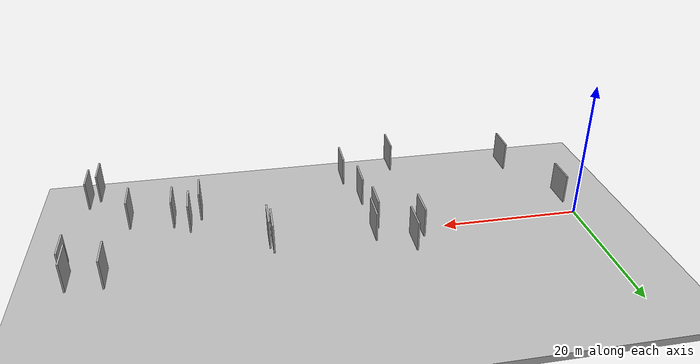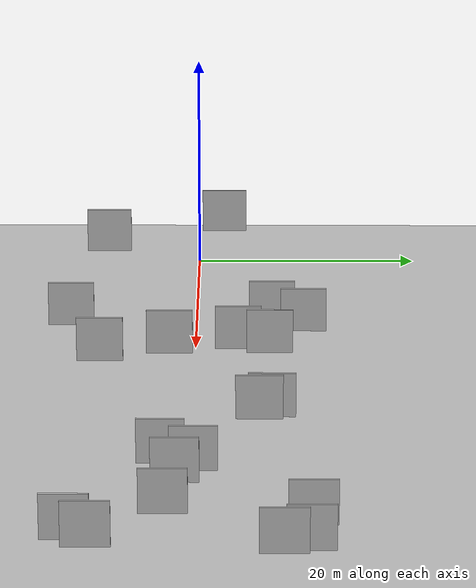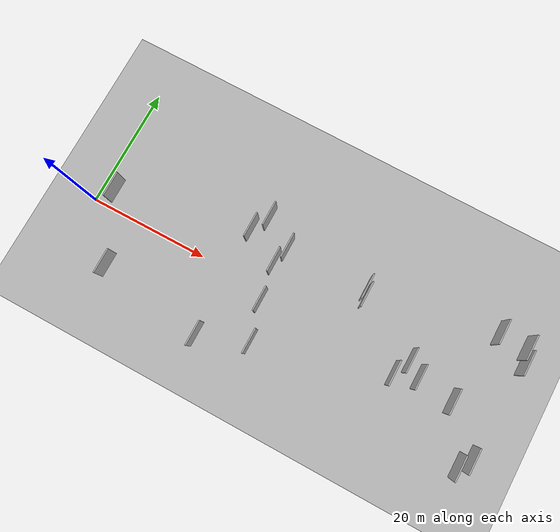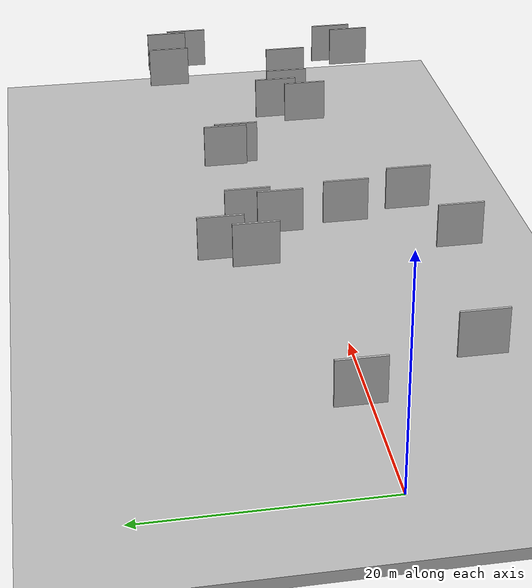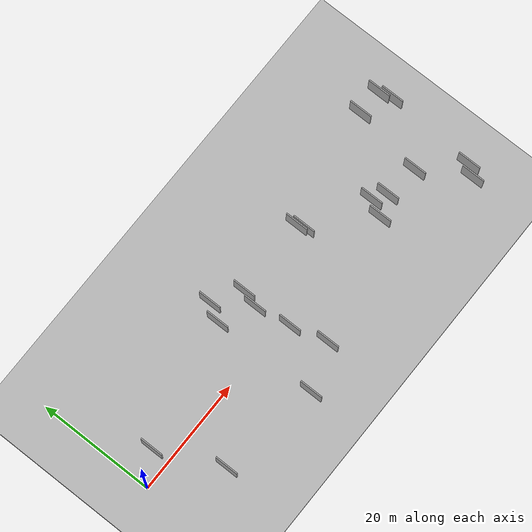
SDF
<?xml version="1.0" encoding="utf-8"?>

<sdf version="1.6">

   <world name="default">

      <gui fullscreen="0">

         <camera name="user_camera">

            <pose>-15 0 4.57585 0 0 0</pose>

            <view_controller>orbit</view_controller>

         </camera>

      </gui>

      <scene>

         <sky>

           <clouds>

             <speed>12</speed>

           </clouds>

         </sky>

         <ambient>0.4 0.4 0.4 1</ambient>

         <background>0.7 0.7 0.7 1</background>

         <shadows>1</shadows>

      </scene>

      <gravity>0 0 -9.8066</gravity>

      <magnetic_field>6e-06 2.3e-05 -4.2e-05</magnetic_field>

      <physics default="0" name="default_physics" type="ode">

         <ode>

            <solver>

               <type>quick</type>

               <iters>10</iters>

               <sor>1.0</sor>

               <use_dynamic_moi_rescaling>0</use_dynamic_moi_rescaling>

            </solver>

            <constraints>

               <cfm>0</cfm>

               <erp>0.2</erp>

               <contact_max_correcting_vel>100</contact_max_correcting_vel>

               <contact_surface_layer>0.001</contact_surface_layer>

            </constraints>

         </ode>

         <max_step_size>0.004</max_step_size>

         <real_time_factor>1</real_time_factor>

         <real_time_update_rate>250</real_time_update_rate>

      </physics>

      <light name="sun" type="directional">

         <cast_shadows>1</cast_shadows>

         <pose>0 0 10 0 0 0</pose>

         <diffuse>0.8 0.8 0.8 1</diffuse>

         <specular>0.2 0.2 0.2 1</specular>

         <attenuation>

            <range>1000</range>

            <constant>0.9</constant>

            <linear>0.01</linear>

            <quadratic>0.001</quadratic>

         </attenuation>

         <direction>-0.5 0.1 -0.9</direction>

      </light>

      <include>

         <name>ground_plane_1</name>

         <uri>model://HANNAS_ground_plane</uri>

         <pose>0 0 0  0 0 0</pose>

      </include>

      <include>

         <name>ground_plane_2</name>

         <uri>model://HANNAS_ground_plane</uri>

         <pose>100 0 0  0 0 0</pose>

      </include>

      <model name="HANNAS_wall_1">

         <static>1</static>

         <pose frame="">53.8403 -2.2216 5.0 0.000000 0.000000 1.570796</pose>

         <link name="link">

            <pose frame="">0 0 2.00 0 0 0</pose>

            <collision name="collision">

               <geometry>

                  <box>

                     <size>4.00 0.2 4.00</size>

                  </box>

               </geometry>

               <max_contacts>10</max_contacts>

               <surface>

                  <contact>

                     <ode/>

                  </contact>

                  <bounce/>

                  <friction>

                     <torsional>

                        <ode/>

                     </torsional>

                     <ode/>

                  </friction>

               </surface>

            </collision>

            <visual name="visual">

               <cast_shadows>0</cast_shadows>

               <geometry>

                  <box>

                     <size>4.00 0.2 4.00</size>

                  </box>

               </geometry>

               <material>

                  <script>

                     <uri>model://HANNAS_wall/materials/scripts</uri>

                     <uri>model://HANNAS_wall/materials/textures</uri>

                     <name>vrc/HANNAS_wall</name>

                  </script>

               </material>

            </visual>

            <self_collide>0</self_collide>

            <enable_wind>0</enable_wind>

            <kinematic>0</kinematic>

         </link>

      </model>

      <model name="HANNAS_wall_2">

         <static>1</static>

         <pose frame="">27.2654 9.5845 5.0 0.000000 0.000000 1.570796</pose>

         <link name="link">

            <pose frame="">0 0 2.00 0 0 0</pose>

            <collision name="collision">

               <geometry>

                  <box>

                     <size>4.00 0.2 4.00</size>

                  </box>

               </geometry>

               <max_contacts>10</max_contacts>

               <surface>

                  <contact>

                     <ode/>

                  </contact>

                  <bounce/>

                  <friction>

                     <torsional>

                        <ode/>

                     </torsional>

                     <ode/>

                  </friction>

               </surface>

            </collision>

            <visual name="visual">

               <cast_shadows>0</cast_shadows>

               <geometry>

                  <box>

                     <size>4.00 0.2 4.00</size>

                  </box>

               </geometry>

               <material>

                  <script>

                     <uri>model://HANNAS_wall/materials/scripts</uri>

                     <uri>model://HANNAS_wall/materials/textures</uri>

                     <name>vrc/HANNAS_wall</name>

                  </script>

               </material>

            </visual>

            <self_collide>0</self_collide>

            <enable_wind>0</enable_wind>

            <kinematic>0</kinematic>

         </link>

      </model>

      <model name="HANNAS_wall_3">

         <static>1</static>

         <pose frame="">33.6420 -7.9944 5.0 0.000000 0.000000 1.570796</pose>

         <link name="link">

            <pose frame="">0 0 2.00 0 0 0</pose>

            <collision name="collision">

               <geometry>

                  <box>

                     <size>4.00 0.2 4.00</size>

                  </box>

               </geometry>

               <max_contacts>10</max_contacts>

               <surface>

                  <contact>

                     <ode/>

                  </contact>

                  <bounce/>

                  <friction>

                     <torsional>

                        <ode/>

                     </torsional>

                     <ode/>

                  </friction>

               </surface>

            </collision>

            <visual name="visual">

               <cast_shadows>0</cast_shadows>

               <geometry>

                  <box>

                     <size>4.00 0.2 4.00</size>

                  </box>

               </geometry>

               <material>

                  <script>

                     <uri>model://HANNAS_wall/materials/scripts</uri>

                     <uri>model://HANNAS_wall/materials/textures</uri>

                     <name>vrc/HANNAS_wall</name>

                  </script>

               </material>

            </visual>

            <self_collide>0</self_collide>

            <enable_wind>0</enable_wind>

            <kinematic>0</kinematic>

         </link>

      </model>

      <model name="HANNAS_wall_4">

         <static>1</static>

         <pose frame="">26.0785 -10.7905 5.0 0.000000 0.000000 1.570796</pose>

         <link name="link">

            <pose frame="">0 0 2.00 0 0 0</pose>

            <collision name="collision">

               <geometry>

                  <box>

                     <size>4.00 0.2 4.00</size>

                  </box>

               </geometry>

               <max_contacts>10</max_contacts>

               <surface>

                  <contact>

                     <ode/>

                  </contact>

                  <bounce/>

                  <friction>

                     <torsional>

                        <ode/>

                     </torsional>

                     <ode/>

                  </friction>

               </surface>

            </collision>

            <visual name="visual">

               <cast_shadows>0</cast_shadows>

               <geometry>

                  <box>

                     <size>4.00 0.2 4.00</size>

                  </box>

               </geometry>

               <material>

                  <script>

                     <uri>model://HANNAS_wall/materials/scripts</uri>

                     <uri>model://HANNAS_wall/materials/textures</uri>

                     <name>vrc/HANNAS_wall</name>

                  </script>

               </material>

            </visual>

            <self_collide>0</self_collide>

            <enable_wind>0</enable_wind>

            <kinematic>0</kinematic>

         </link>

      </model>

      <model name="HANNAS_wall_5">

         <static>1</static>

         <pose frame="">9.2703 -8.0717 5.0 0.000000 0.000000 1.570796</pose>

         <link name="link">

            <pose frame="">0 0 2.00 0 0 0</pose>

            <collision name="collision">

               <geometry>

                  <box>

                     <size>4.00 0.2 4.00</size>

                  </box>

               </geometry>

               <max_contacts>10</max_contacts>

               <surface>

                  <contact>

                     <ode/>

                  </contact>

                  <bounce/>

                  <friction>

                     <torsional>

                        <ode/>

                     </torsional>

                     <ode/>

                  </friction>

               </surface>

            </collision>

            <visual name="visual">

               <cast_shadows>0</cast_shadows>

               <geometry>

                  <box>

                     <size>4.00 0.2 4.00</size>

                  </box>

               </geometry>

               <material>

                  <script>

                     <uri>model://HANNAS_wall/materials/scripts</uri>

                     <uri>model://HANNAS_wall/materials/textures</uri>

                     <name>vrc/HANNAS_wall</name>

                  </script>

               </material>

            </visual>

            <self_collide>0</self_collide>

            <enable_wind>0</enable_wind>

            <kinematic>0</kinematic>

         </link>

      </model>

      <model name="HANNAS_wall_6">

         <static>1</static>

         <pose frame="">45.3317 5.8396 5.0 0.000000 0.000000 1.570796</pose>

         <link name="link">

            <pose frame="">0 0 2.00 0 0 0</pose>

            <collision name="collision">

               <geometry>

                  <box>

                     <size>4.00 0.2 4.00</size>

                  </box>

               </geometry>

               <max_contacts>10</max_contacts>

               <surface>

                  <contact>

                     <ode/>

                  </contact>

                  <bounce/>

                  <friction>

                     <torsional>

                        <ode/>

                     </torsional>

                     <ode/>

                  </friction>

               </surface>

            </collision>

            <visual name="visual">

               <cast_shadows>0</cast_shadows>

               <geometry>

                  <box>

                     <size>4.00 0.2 4.00</size>

                  </box>

               </geometry>

               <material>

                  <script>

                     <uri>model://HANNAS_wall/materials/scripts</uri>

                     <uri>model://HANNAS_wall/materials/textures</uri>

                     <name>vrc/HANNAS_wall</name>

                  </script>

               </material>

            </visual>

            <self_collide>0</self_collide>

            <enable_wind>0</enable_wind>

            <kinematic>0</kinematic>

         </link>

      </model>

      <model name="HANNAS_wall_7">

         <static>1</static>

         <pose frame="">55.2078 0.4994 5.0 0.000000 0.000000 1.570796</pose>

         <link name="link">

            <pose frame="">0 0 2.00 0 0 0</pose>

            <collision name="collision">

               <geometry>

                  <box>

                     <size>4.00 0.2 4.00</size>

                  </box>

               </geometry>

               <max_contacts>10</max_contacts>

               <surface>

                  <contact>

                     <ode/>

                  </contact>

                  <bounce/>

                  <friction>

                     <torsional>

                        <ode/>

                     </torsional>

                     <ode/>

                  </friction>

               </surface>

            </collision>

            <visual name="visual">

               <cast_shadows>0</cast_shadows>

               <geometry>

                  <box>

                     <size>4.00 0.2 4.00</size>

                  </box>

               </geometry>

               <material>

                  <script>

                     <uri>model://HANNAS_wall/materials/scripts</uri>

                     <uri>model://HANNAS_wall/materials/textures</uri>

                     <name>vrc/HANNAS_wall</name>

                  </script>

               </material>

            </visual>

            <self_collide>0</self_collide>

            <enable_wind>0</enable_wind>

            <kinematic>0</kinematic>

         </link>

      </model>

      <model name="HANNAS_wall_8">

         <static>1</static>

         <pose frame="">4.5023 2.3879 5.0 0.000000 0.000000 1.570796</pose>

         <link name="link">

            <pose frame="">0 0 2.00 0 0 0</pose>

            <collision name="collision">

               <geometry>

                  <box>

                     <size>4.00 0.2 4.00</size>

                  </box>

               </geometry>

               <max_contacts>10</max_contacts>

               <surface>

                  <contact>

                     <ode/>

                  </contact>

                  <bounce/>

                  <friction>

                     <torsional>

                        <ode/>

                     </torsional>

                     <ode/>

                  </friction>

               </surface>

            </collision>

            <visual name="visual">

               <cast_shadows>0</cast_shadows>

               <geometry>

                  <box>

                     <size>4.00 0.2 4.00</size>

                  </box>

               </geometry>

               <material>

                  <script>

                     <uri>model://HANNAS_wall/materials/scripts</uri>

                     <uri>model://HANNAS_wall/materials/textures</uri>

                     <name>vrc/HANNAS_wall</name>

                  </script>

               </material>

            </visual>

            <self_collide>0</self_collide>

            <enable_wind>0</enable_wind>

            <kinematic>0</kinematic>

         </link>

      </model>

      <model name="HANNAS_wall_9">

         <static>1</static>

         <pose frame="">25.6572 6.8252 5.0 0.000000 0.000000 1.570796</pose>

         <link name="link">

            <pose frame="">0 0 2.00 0 0 0</pose>

            <collision name="collision">

               <geometry>

                  <box>

                     <size>4.00 0.2 4.00</size>

                  </box>

               </geometry>

               <max_contacts>10</max_contacts>

               <surface>

                  <contact>

                     <ode/>

                  </contact>

                  <bounce/>

                  <friction>

                     <torsional>

                        <ode/>

                     </torsional>

                     <ode/>

                  </friction>

               </surface>

            </collision>

            <visual name="visual">

               <cast_shadows>0</cast_shadows>

               <geometry>

                  <box>

                     <size>4.00 0.2 4.00</size>

                  </box>

               </geometry>

               <material>

                  <script>

                     <uri>model://HANNAS_wall/materials/scripts</uri>

                     <uri>model://HANNAS_wall/materials/textures</uri>

                     <name>vrc/HANNAS_wall</name>

                  </script>

               </material>

            </visual>

            <self_collide>0</self_collide>

            <enable_wind>0</enable_wind>

            <kinematic>0</kinematic>

         </link>

      </model>

      <model name="HANNAS_wall_10">

         <static>1</static>

         <pose frame="">63.0235 -1.7782 5.0 0.000000 0.000000 1.570796</pose>

         <link name="link">

            <pose frame="">0 0 2.00 0 0 0</pose>

            <collision name="collision">

               <geometry>

                  <box>

                     <size>4.00 0.2 4.00</size>

                  </box>

               </geometry>

               <max_contacts>10</max_contacts>

               <surface>

                  <contact>

                     <ode/>

                  </contact>

                  <bounce/>

                  <friction>

                     <torsional>

                        <ode/>

                     </torsional>

                     <ode/>

                  </friction>

               </surface>

            </collision>

            <visual name="visual">

               <cast_shadows>0</cast_shadows>

               <geometry>

                  <box>

                     <size>4.00 0.2 4.00</size>

                  </box>

               </geometry>

               <material>

                  <script>

                     <uri>model://HANNAS_wall/materials/scripts</uri>

                     <uri>model://HANNAS_wall/materials/textures</uri>

                     <name>vrc/HANNAS_wall</name>

                  </script>

               </material>

            </visual>

            <self_collide>0</self_collide>

            <enable_wind>0</enable_wind>

            <kinematic>0</kinematic>

         </link>

      </model>

      <model name="HANNAS_wall_11">

         <static>1</static>

         <pose frame="">69.8757 7.9384 5.0 0.000000 0.000000 1.570796</pose>

         <link name="link">

            <pose frame="">0 0 2.00 0 0 0</pose>

            <collision name="collision">

               <geometry>

                  <box>

                     <size>4.00 0.2 4.00</size>

                  </box>

               </geometry>

               <max_contacts>10</max_contacts>

               <surface>

                  <contact>

                     <ode/>

                  </contact>

                  <bounce/>

                  <friction>

                     <torsional>

                        <ode/>

                     </torsional>

                     <ode/>

                  </friction>

               </surface>

            </collision>

            <visual name="visual">

               <cast_shadows>0</cast_shadows>

               <geometry>

                  <box>

                     <size>4.00 0.2 4.00</size>

                  </box>

               </geometry>

               <material>

                  <script>

                     <uri>model://HANNAS_wall/materials/scripts</uri>

                     <uri>model://HANNAS_wall/materials/textures</uri>

                     <name>vrc/HANNAS_wall</name>

                  </script>

               </material>

            </visual>

            <self_collide>0</self_collide>

            <enable_wind>0</enable_wind>

            <kinematic>0</kinematic>

         </link>

      </model>

      <model name="HANNAS_wall_12">

         <static>1</static>

         <pose frame="">68.8496 -7.6963 5.0 0.000000 0.000000 1.570796</pose>

         <link name="link">

            <pose frame="">0 0 2.00 0 0 0</pose>

            <collision name="collision">

               <geometry>

                  <box>

                     <size>4.00 0.2 4.00</size>

                  </box>

               </geometry>

               <max_contacts>10</max_contacts>

               <surface>

                  <contact>

                     <ode/>

                  </contact>

                  <bounce/>

                  <friction>

                     <torsional>

                        <ode/>

                     </torsional>

                     <ode/>

                  </friction>

               </surface>

            </collision>

            <visual name="visual">

               <cast_shadows>0</cast_shadows>

               <geometry>

                  <box>

                     <size>4.00 0.2 4.00</size>

                  </box>

               </geometry>

               <material>

                  <script>

                     <uri>model://HANNAS_wall/materials/scripts</uri>

                     <uri>model://HANNAS_wall/materials/textures</uri>

                     <name>vrc/HANNAS_wall</name>

                  </script>

               </material>

            </visual>

            <self_collide>0</self_collide>

            <enable_wind>0</enable_wind>

            <kinematic>0</kinematic>

         </link>

      </model>

      <model name="HANNAS_wall_13">

         <static>1</static>

         <pose frame="">32.0308 -2.0219 5.0 0.000000 0.000000 1.570796</pose>

         <link name="link">

            <pose frame="">0 0 2.00 0 0 0</pose>

            <collision name="collision">

               <geometry>

                  <box>

                     <size>4.00 0.2 4.00</size>

                  </box>

               </geometry>

               <max_contacts>10</max_contacts>

               <surface>

                  <contact>

                     <ode/>

                  </contact>

                  <bounce/>

                  <friction>

                     <torsional>

                        <ode/>

                     </torsional>

                     <ode/>

                  </friction>

               </surface>

            </collision>

            <visual name="visual">

               <cast_shadows>0</cast_shadows>

               <geometry>

                  <box>

                     <size>4.00 0.2 4.00</size>

                  </box>

               </geometry>

               <material>

                  <script>

                     <uri>model://HANNAS_wall/materials/scripts</uri>

                     <uri>model://HANNAS_wall/materials/textures</uri>

                     <name>vrc/HANNAS_wall</name>

                  </script>

               </material>

            </visual>

            <self_collide>0</self_collide>

            <enable_wind>0</enable_wind>

            <kinematic>0</kinematic>

         </link>

      </model>

      <model name="HANNAS_wall_14">

         <static>1</static>

         <pose frame="">67.5826 -9.4188 5.0 0.000000 0.000000 1.570796</pose>

         <link name="link">

            <pose frame="">0 0 2.00 0 0 0</pose>

            <collision name="collision">

               <geometry>

                  <box>

                     <size>4.00 0.2 4.00</size>

                  </box>

               </geometry>

               <max_contacts>10</max_contacts>

               <surface>

                  <contact>

                     <ode/>

                  </contact>

                  <bounce/>

                  <friction>

                     <torsional>

                        <ode/>

                     </torsional>

                     <ode/>

                  </friction>

               </surface>

            </collision>

            <visual name="visual">

               <cast_shadows>0</cast_shadows>

               <geometry>

                  <box>

                     <size>4.00 0.2 4.00</size>

                  </box>

               </geometry>

               <material>

                  <script>

                     <uri>model://HANNAS_wall/materials/scripts</uri>

                     <uri>model://HANNAS_wall/materials/textures</uri>

                     <name>vrc/HANNAS_wall</name>

                  </script>

               </material>

            </visual>

            <self_collide>0</self_collide>

            <enable_wind>0</enable_wind>

            <kinematic>0</kinematic>

         </link>

      </model>

      <model name="HANNAS_wall_15">

         <static>1</static>

         <pose frame="">57.3546 -0.9714 5.0 0.000000 0.000000 1.570796</pose>

         <link name="link">

            <pose frame="">0 0 2.00 0 0 0</pose>

            <collision name="collision">

               <geometry>

                  <box>

                     <size>4.00 0.2 4.00</size>

                  </box>

               </geometry>

               <max_contacts>10</max_contacts>

               <surface>

                  <contact>

                     <ode/>

                  </contact>

                  <bounce/>

                  <friction>

                     <torsional>

                        <ode/>

                     </torsional>

                     <ode/>

                  </friction>

               </surface>

            </collision>

            <visual name="visual">

               <cast_shadows>0</cast_shadows>

               <geometry>

                  <box>

                     <size>4.00 0.2 4.00</size>

                  </box>

               </geometry>

               <material>

                  <script>

                     <uri>model://HANNAS_wall/materials/scripts</uri>

                     <uri>model://HANNAS_wall/materials/textures</uri>

                     <name>vrc/HANNAS_wall</name>

                  </script>

               </material>

            </visual>

            <self_collide>0</self_collide>

            <enable_wind>0</enable_wind>

            <kinematic>0</kinematic>

         </link>

      </model>

      <model name="HANNAS_wall_16">

         <static>1</static>

         <pose frame="">44.9164 6.8927 5.0 0.000000 0.000000 1.570796</pose>

         <link name="link">

            <pose frame="">0 0 2.00 0 0 0</pose>

            <collision name="collision">

               <geometry>

                  <box>

                     <size>4.00 0.2 4.00</size>

                  </box>

               </geometry>

               <max_contacts>10</max_contacts>

               <surface>

                  <contact>

                     <ode/>

                  </contact>

                  <bounce/>

                  <friction>

                     <torsional>

                        <ode/>

                     </torsional>

                     <ode/>

                  </friction>

               </surface>

            </collision>

            <visual name="visual">

               <cast_shadows>0</cast_shadows>

               <geometry>

                  <box>

                     <size>4.00 0.2 4.00</size>

                  </box>

               </geometry>

               <material>

                  <script>

                     <uri>model://HANNAS_wall/materials/scripts</uri>

                     <uri>model://HANNAS_wall/materials/textures</uri>

                     <name>vrc/HANNAS_wall</name>

                  </script>

               </material>

            </visual>

            <self_collide>0</self_collide>

            <enable_wind>0</enable_wind>

            <kinematic>0</kinematic>

         </link>

      </model>

      <model name="HANNAS_wall_17">

         <static>1</static>

         <pose frame="">64.9550 10.2667 5.0 0.000000 0.000000 1.570796</pose>

         <link name="link">

            <pose frame="">0 0 2.00 0 0 0</pose>

            <collision name="collision">

               <geometry>

                  <box>

                     <size>4.00 0.2 4.00</size>

                  </box>

               </geometry>

               <max_contacts>10</max_contacts>

               <surface>

                  <contact>

                     <ode/>

                  </contact>

                  <bounce/>

                  <friction>

                     <torsional>

                        <ode/>

                     </torsional>

                     <ode/>

                  </friction>

               </surface>

            </collision>

            <visual name="visual">

               <cast_shadows>0</cast_shadows>

               <geometry>

                  <box>

                     <size>4.00 0.2 4.00</size>

                  </box>

               </geometry>

               <material>

                  <script>

                     <uri>model://HANNAS_wall/materials/scripts</uri>

                     <uri>model://HANNAS_wall/materials/textures</uri>

                     <name>vrc/HANNAS_wall</name>

                  </script>

               </material>

            </visual>

            <self_collide>0</self_collide>

            <enable_wind>0</enable_wind>

            <kinematic>0</kinematic>

         </link>

      </model>

      <model name="HANNAS_wall_18">

         <static>1</static>

         <pose frame="">69.3346 10.0881 5.0 0.000000 0.000000 1.570796</pose>

         <link name="link">

            <pose frame="">0 0 2.00 0 0 0</pose>

            <collision name="collision">

               <geometry>

                  <box>

                     <size>4.00 0.2 4.00</size>

                  </box>

               </geometry>

               <max_contacts>10</max_contacts>

               <surface>

                  <contact>

                     <ode/>

                  </contact>

                  <bounce/>

                  <friction>

                     <torsional>

                        <ode/>

                     </torsional>

                     <ode/>

                  </friction>

               </surface>

            </collision>

            <visual name="visual">

               <cast_shadows>0</cast_shadows>

               <geometry>

                  <box>

                     <size>4.00 0.2 4.00</size>

                  </box>

               </geometry>

               <material>

                  <script>

                     <uri>model://HANNAS_wall/materials/scripts</uri>

                     <uri>model://HANNAS_wall/materials/textures</uri>

                     <name>vrc/HANNAS_wall</name>

                  </script>

               </material>

            </visual>

            <self_collide>0</self_collide>

            <enable_wind>0</enable_wind>

            <kinematic>0</kinematic>

         </link>

      </model>

      <model name="HANNAS_wall_19">

         <static>1</static>

         <pose frame="">31.8856 6.6641 5.0 0.000000 0.000000 1.570796</pose>

         <link name="link">

            <pose frame="">0 0 2.00 0 0 0</pose>

            <collision name="collision">

               <geometry>

                  <box>

                     <size>4.00 0.2 4.00</size>

                  </box>

               </geometry>

               <max_contacts>10</max_contacts>

               <surface>

                  <contact>

                     <ode/>

                  </contact>

                  <bounce/>

                  <friction>

                     <torsional>

                        <ode/>

                     </torsional>

                     <ode/>

                  </friction>

               </surface>

            </collision>

            <visual name="visual">

               <cast_shadows>0</cast_shadows>

               <geometry>

                  <box>

                     <size>4.00 0.2 4.00</size>

                  </box>

               </geometry>

               <material>

                  <script>

                     <uri>model://HANNAS_wall/materials/scripts</uri>

                     <uri>model://HANNAS_wall/materials/textures</uri>

                     <name>vrc/HANNAS_wall</name>

                  </script>

               </material>

            </visual>

            <self_collide>0</self_collide>

            <enable_wind>0</enable_wind>

            <kinematic>0</kinematic>

         </link>

      </model>

      <model name="HANNAS_wall_20">

         <static>1</static>

         <pose frame="">31.0880 3.9325 5.0 0.000000 0.000000 1.570796</pose>

         <link name="link">

            <pose frame="">0 0 2.00 0 0 0</pose>

            <collision name="collision">

               <geometry>

                  <box>

                     <size>4.00 0.2 4.00</size>

                  </box>

               </geometry>

               <max_contacts>10</max_contacts>

               <surface>

                  <contact>

                     <ode/>

                  </contact>

                  <bounce/>

                  <friction>

                     <torsional>

                        <ode/>

                     </torsional>

                     <ode/>

                  </friction>

               </surface>

            </collision>

            <visual name="visual">

               <cast_shadows>0</cast_shadows>

               <geometry>

                  <box>

                     <size>4.00 0.2 4.00</size>

                  </box>

               </geometry>

               <material>

                  <script>

                     <uri>model://HANNAS_wall/materials/scripts</uri>

                     <uri>model://HANNAS_wall/materials/textures</uri>

                     <name>vrc/HANNAS_wall</name>

                  </script>

               </material>

            </visual>

            <self_collide>0</self_collide>

            <enable_wind>0</enable_wind>

            <kinematic>0</kinematic>

         </link>

      </model>

   </world>

</sdf>

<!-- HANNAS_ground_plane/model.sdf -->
<sdf version="1.4">
<model name="HANNAS_ground_plane">
  <static>true</static>
    <link name="link">
      <collision name="collision">
        <geometry>
          <plane>
            <normal>0 0 1</normal>
            <size>1000 1000</size>
          </plane>
        </geometry>
        <surface>
          <friction>
            <ode>
              <mu>100</mu>
              <mu2>50</mu2>
            </ode>
          </friction>
        </surface>
      </collision>
      <visual name="visual">
        <cast_shadows>false</cast_shadows>
        <geometry>
          <plane>
            <normal>0 0 1</normal>
            <size>1000 1000</size>
          </plane>
        </geometry>
        <material>
          <script>
            <uri>model://HANNAS_ground_plane/materials/scripts/HANNAS_ground_plane.material</uri>
	    <uri>model://HANNAS_ground_plane/materials/textures</uri>
            <name>HANNASGroundPlane/Image</name>
          </script>
        </material>
      </visual>
    </link>
  </model>
</sdf>
